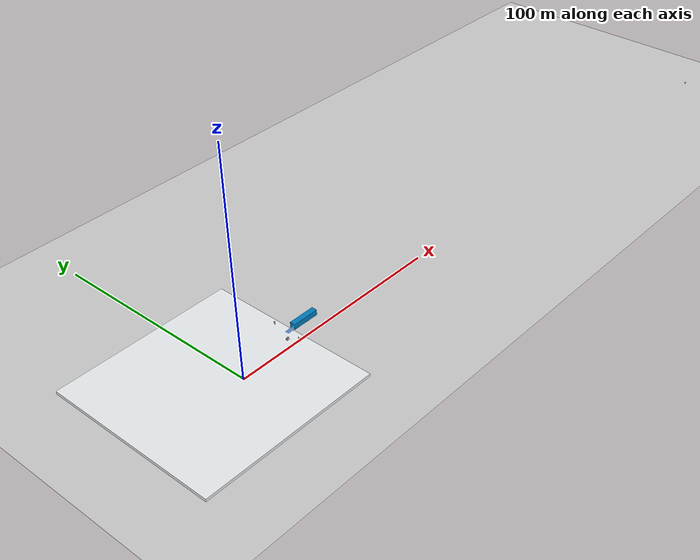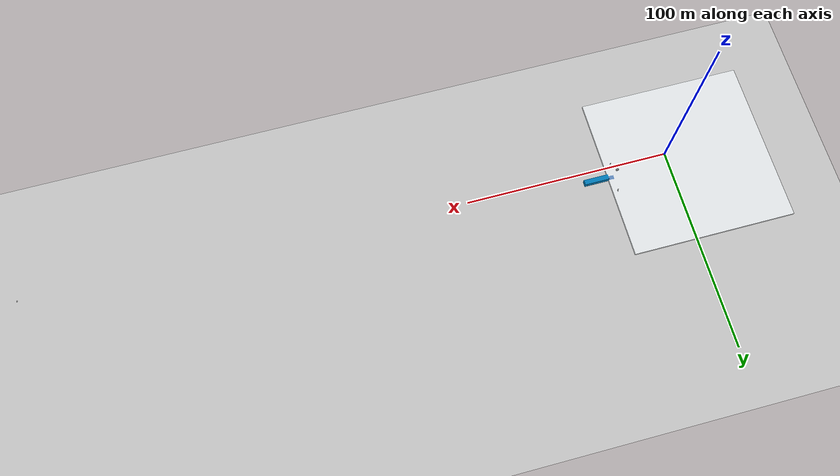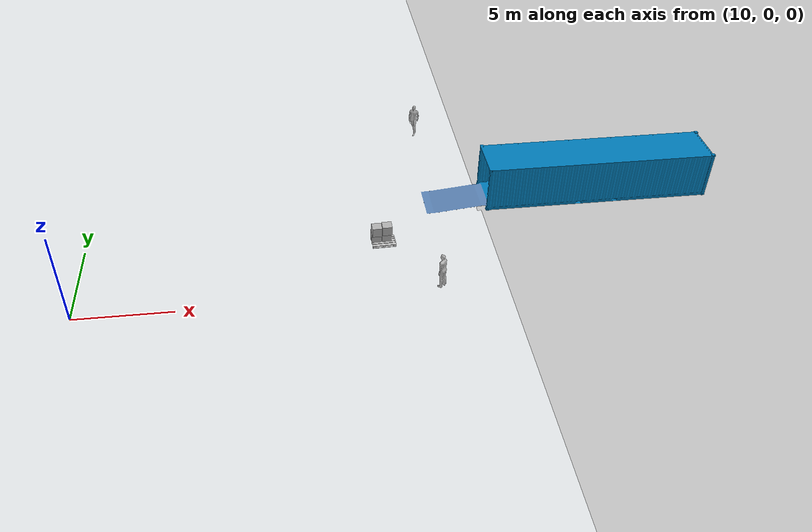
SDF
<sdf version="1.7">
 <world name="default">
  <light name="sun" type="directional">
   <pose>0 0 10 0 -0 0</pose>
   <diffuse>0.8 0.8 0.8 1</diffuse>
   <specular>0.2 0.2 0.2 1</specular>
   <attenuation>
    <range>1000</range>
    <constant>0.9</constant>
    <linear>0.01</linear>
    <quadratic>0.001</quadratic>
   </attenuation>
   <direction>-0.5 0.1 -0.9</direction>
   <spot><inner_angle>0</inner_angle><outer_angle>0</outer_angle><falloff>0</falloff></spot>
  </light>
  <model name="ground_plane">
   <static>1</static>
   <link name="link">
    <collision name="collision">
     <geometry><plane><normal>0 0 1</normal><size>100 100</size></plane></geometry>
     <surface>
      <contact><collide_bitmask>65535</collide_bitmask></contact>
      <friction><ode><mu>100</mu><mu2>50</mu2></ode></friction>
     </surface>
    </collision>
    <visual name="visual">
     <cast_shadows>0</cast_shadows>
     <geometry><plane><normal>0 0 1</normal><size>100 100</size></plane></geometry>
     <material>
      <script><uri>file://media/materials/scripts/gazebo.material</uri><name>Gazebo/Grey</name></script>
     </material>
    </visual>
   </link>
  </model>
  <gravity>0 0 -9.8</gravity>
  <magnetic_field>6e-06 2.3e-05 -4.2e-05</magnetic_field>
  <atmosphere type="adiabatic"/>
  <physics type="ode">
   <max_step_size>0.001</max_step_size>
   <real_time_factor>1</real_time_factor>
   <real_time_update_rate>1000</real_time_update_rate>
  </physics>
  <scene><ambient>0.4 0.4 0.4 1</ambient><background>0.7 0.7 0.7 1</background><shadows>1</shadows></scene>
  <spherical_coordinates>
   <surface_model>EARTH_WGS84</surface_model>
   <latitude_deg>0</latitude_deg>
   <longitude_deg>0</longitude_deg>
   <elevation>0</elevation>
   <heading_deg>0</heading_deg>
  </spherical_coordinates>
  <model name="warehouse">
   <static>1</static>
   <link name="link">
    <collision name="collision">
     <geometry><mesh><uri>model://warehouse_02/meshes/warehouse_sim_9.dae</uri></mesh></geometry>
    </collision>
    <visual name="visual">
     <geometry><mesh><uri>model://warehouse_02/meshes/warehouse_sim_9.dae</uri></mesh></geometry>
    </visual>
   </link>
   <pose>31.4271 5.66762 0 0 -0 0</pose>
  </model>
  <model name="euro_pallet">
   <link name="link">
    <pose>0 0 0.05 0 -0 0</pose>
    <inertial>
     <mass>20</mass>
     <inertia><ixx>2.43</ixx><ixy>0</ixy><ixz>0</ixz><iyy>1.1</iyy><iyz>0</iyz><izz>3.47</izz></inertia>
    </inertial>
    <collision name="collision">
     <pose>0 0 0.05 0 -0 0</pose>
     <geometry><mesh><uri>model://euro_pallet/meshes/pallet.dae</uri><scale>0.1 0.1 0.1</scale></mesh></geometry>
    </collision>
    <visual name="visual">
     <pose>0 0 0.05 0 -0 0</pose>
     <geometry><mesh><uri>model://euro_pallet/meshes/pallet.dae</uri><scale>0.1 0.1 0.1</scale></mesh></geometry>
    </visual>
   </link>
   <pose>25.5538 2.52715 1.29987 -4e-06 -0 -1.53527</pose>
  </model>
  <model name="500x500x500_box">
   <link name="link">
    <collision name="collision">
     <geometry>
      <mesh><scale>1 1 1</scale><uri>model://500x500x500_box/meshes/500x500x500_box_v2.dae</uri></mesh>
     </geometry>
    </collision>
    <visual name="visual">
     <geometry>
      <mesh><scale>1 1 1</scale><uri>model://500x500x500_box/meshes/500x500x500_box_v2.dae</uri></mesh>
     </geometry>
    </visual>
    <inertial>
     <inertia><ixx>1</ixx><ixy>0</ixy><ixz>0</ixz><iyy>1</iyy><iyz>0</iyz><izz>1</izz></inertia>
     <mass>1</mass>
    </inertial>
   </link>
   <pose>25.1851 2.66778 1.67213 0.001304 6.3e-05 -0.00913</pose>
  </model>
  <model name="500x500x500_box_clone">
   <link name="link">
    <collision name="collision">
     <geometry>
      <mesh><scale>1 1 1</scale><uri>model://500x500x500_box/meshes/500x500x500_box_v2.dae</uri></mesh>
     </geometry>
    </collision>
    <visual name="visual">
     <geometry>
      <mesh><scale>1 1 1</scale><uri>model://500x500x500_box/meshes/500x500x500_box_v2.dae</uri></mesh>
     </geometry>
    </visual>
    <inertial>
     <inertia><ixx>1</ixx><ixy>0</ixy><ixz>0</ixz><iyy>1</iyy><iyz>0</iyz><izz>1</izz></inertia>
     <mass>1</mass>
    </inertial>
   </link>
   <pose>25.7065 2.68933 1.67212 0.00123 5.6e-05 -0.008646</pose>
  </model>
  <model name="500x500x500_box_clone_clone">
   <link name="link">
    <collision name="collision">
     <geometry>
      <mesh><scale>1 1 1</scale><uri>model://500x500x500_box/meshes/500x500x500_box_v2.dae</uri></mesh>
     </geometry>
    </collision>
    <visual name="visual">
     <geometry>
      <mesh><scale>1 1 1</scale><uri>model://500x500x500_box/meshes/500x500x500_box_v2.dae</uri></mesh>
     </geometry>
    </visual>
    <inertial>
     <inertia><ixx>1</ixx><ixy>0</ixy><ixz>0</ixz><iyy>1</iyy><iyz>0</iyz><izz>1</izz></inertia>
     <mass>1</mass>
    </inertial>
   </link>
   <pose>25.7219 2.53458 2.17193 0.001233 4.6e-05 -0.001243</pose>
  </model>
  <model name="500x500x500_box_clone_clone_clone">
   <link name="link">
    <collision name="collision">
     <geometry>
      <mesh><scale>1 1 1</scale><uri>model://500x500x500_box/meshes/500x500x500_box_v2.dae</uri></mesh>
     </geometry>
    </collision>
    <visual name="visual">
     <geometry>
      <mesh><scale>1 1 1</scale><uri>model://500x500x500_box/meshes/500x500x500_box_v2.dae</uri></mesh>
     </geometry>
    </visual>
    <inertial>
     <inertia><ixx>1</ixx><ixy>0</ixy><ixz>0</ixz><iyy>1</iyy><iyz>0</iyz><izz>1</izz></inertia>
     <mass>1</mass>
    </inertial>
   </link>
   <pose>25.1996 2.48039 2.17214 0.001356 5.4e-05 -0.000481</pose>
  </model>
  <model name="500x500x500_box_clone_clone_clone_clone">
   <link name="link">
    <collision name="collision">
     <geometry>
      <mesh><scale>1 1 1</scale><uri>model://500x500x500_box/meshes/500x500x500_box_v2.dae</uri></mesh>
     </geometry>
    </collision>
    <visual name="visual">
     <geometry>
      <mesh><scale>1 1 1</scale><uri>model://500x500x500_box/meshes/500x500x500_box_v2.dae</uri></mesh>
     </geometry>
    </visual>
    <inertial>
     <inertia><ixx>1</ixx><ixy>0</ixy><ixz>0</ixz><iyy>1</iyy><iyz>0</iyz><izz>1</izz></inertia>
     <mass>1</mass>
    </inertial>
   </link>
   <pose>42.8307 6.16795 1.79086 -1e-06 -0 -0.00097</pose>
  </model>
  <model name="500x500x500_box_clone_clone_clone_clone_clone">
   <link name="link">
    <collision name="collision">
     <geometry>
      <mesh><scale>1 1 1</scale><uri>model://500x500x500_box/meshes/500x500x500_box_v2.dae</uri></mesh>
     </geometry>
    </collision>
    <visual name="visual">
     <geometry>
      <mesh><scale>1 1 1</scale><uri>model://500x500x500_box/meshes/500x500x500_box_v2.dae</uri></mesh>
     </geometry>
    </visual>
    <inertial>
     <inertia><ixx>1</ixx><ixy>0</ixy><ixz>0</ixz><iyy>1</iyy><iyz>0</iyz><izz>1</izz></inertia>
     <mass>1</mass>
    </inertial>
   </link>
   <pose>315.591 -6.79113 0.25025 1e-06 0 0.002382</pose>
  </model>
  <model name="500x500x500_box_clone_clone_clone_clone_clone_0">
   <link name="link">
    <collision name="collision">
     <geometry>
      <mesh><scale>1 1 1</scale><uri>model://500x500x500_box/meshes/500x500x500_box_v2.dae</uri></mesh>
     </geometry>
    </collision>
    <visual name="visual">
     <geometry>
      <mesh><scale>1 1 1</scale><uri>model://500x500x500_box/meshes/500x500x500_box_v2.dae</uri></mesh>
     </geometry>
    </visual>
    <inertial>
     <inertia><ixx>1</ixx><ixy>0</ixy><ixz>0</ixz><iyy>1</iyy><iyz>0</iyz><izz>1</izz></inertia>
     <mass>1</mass>
    </inertial>
   </link>
   <pose>41.8783 5.70411 1.79086 1.83993 -1.57079 -1.94665</pose>
  </model>
  <model name="500x500x500_box_clone_clone_clone_clone_clone_0_clone">
   <link name="link">
    <collision name="collision">
     <geometry>
      <mesh><scale>1 1 1</scale><uri>model://500x500x500_box/meshes/500x500x500_box_v2.dae</uri></mesh>
     </geometry>
    </collision>
    <visual name="visual">
     <geometry>
      <mesh><scale>1 1 1</scale><uri>model://500x500x500_box/meshes/500x500x500_box_v2.dae</uri></mesh>
     </geometry>
    </visual>
    <inertial>
     <inertia><ixx>1</ixx><ixy>0</ixy><ixz>0</ixz><iyy>1</iyy><iyz>0</iyz><izz>1</izz></inertia>
     <mass>1</mass>
    </inertial>
   </link>
   <pose>42.6613 5.51356 1.79086 0 -0 -0.143335</pose>
  </model>
  <model name="500x500x500_box_clone_clone_clone_clone_clone_0_clone_clone_0">
   <link name="link">
    <collision name="collision">
     <geometry>
      <mesh><scale>1 1 1</scale><uri>model://500x500x500_box/meshes/500x500x500_box_v2.dae</uri></mesh>
     </geometry>
    </collision>
    <visual name="visual">
     <geometry>
      <mesh><scale>1 1 1</scale><uri>model://500x500x500_box/meshes/500x500x500_box_v2.dae</uri></mesh>
     </geometry>
    </visual>
    <inertial>
     <inertia><ixx>1</ixx><ixy>0</ixy><ixz>0</ixz><iyy>1</iyy><iyz>0</iyz><izz>1</izz></inertia>
     <mass>1</mass>
    </inertial>
   </link>
   <pose>42.3459 4.92902 1.79086 1.5708 0 -0.240929</pose>
  </model>
  <model name="person_walking">
   <link name="link">
    <inertial>
     <pose>0 0 0.95 0 -0 0</pose>
     <mass>80</mass>
     <inertia><ixx>27.82</ixx><ixy>0</ixy><ixz>0</ixz><iyy>24.88</iyy><iyz>0</iyz><izz>4.57</izz></inertia>
    </inertial>
    <collision name="bottom">
     <pose>0 0 0.01 0 -0 0</pose>
     <geometry><box><size>0.35 0.75 0.02</size></box></geometry>
    </collision>
    <collision name="person">
     <pose>0 0 -0.02 0 -0 0</pose>
     <geometry><mesh><uri>model://person_walking/meshes/walking.dae</uri></mesh></geometry>
    </collision>
    <visual name="visual">
     <pose>0 0 -0.02 0 -0 0</pose>
     <geometry><mesh><uri>model://person_walking/meshes/walking.dae</uri></mesh></geometry>
    </visual>
   </link>
   <pose>28.7008 12.7975 1.27786 -1e-06 4e-06 -0.449975</pose>
  </model>
  <model name="person_standing">
   <link name="link">
    <inertial>
     <pose>0 -0.1 0.95 0 -0 0</pose>
     <mass>80</mass>
     <inertia><ixx>24.88</ixx><ixy>0</ixy><ixz>0</ixz><iyy>25.73</iyy><iyz>0</iyz><izz>2.48</izz></inertia>
    </inertial>
    <collision name="bottom">
     <pose>0 -0.1 0.01 0 -0 0</pose>
     <geometry><box><size>0.5 0.35 0.02</size></box></geometry>
    </collision>
    <collision name="person">
     <pose>0 0 0.02 0.04 -0 0</pose>
     <geometry><mesh><uri>model://person_standing/meshes/standing.dae</uri></mesh></geometry>
    </collision>
    <visual name="visual">
     <pose>0 0 0.02 0.04 -0 0</pose>
     <geometry><mesh><uri>model://person_standing/meshes/standing.dae</uri></mesh></geometry>
    </visual>
   </link>
   <pose>27.9816 -1.12381 1.27786 -3e-06 -3e-06 -2.39963</pose>
  </model>
  <light name="user_spot_light_0" type="spot">
   <pose>11.212 0.27236 1 0 -0 0</pose>
   <diffuse>0.5 0.5 0.5 1</diffuse>
   <specular>0.1 0.1 0.1 1</specular>
   <direction>0 0 -1</direction>
   <attenuation>
    <range>20</range>
    <constant>0.5</constant>
    <linear>0.01</linear>
    <quadratic>0.001</quadratic>
   </attenuation>
   <cast_shadows>0</cast_shadows>
   <spot><inner_angle>0.6</inner_angle><outer_angle>1</outer_angle><falloff>1</falloff></spot>
  </light>
  <light name="user_point_light_0" type="point">
   <pose>25.3341 6.71963 1 0 -0 0</pose>
   <diffuse>0.5 0.5 0.5 1</diffuse>
   <specular>0.1 0.1 0.1 1</specular>
   <attenuation>
    <range>20</range>
    <constant>0.5</constant>
    <linear>0.01</linear>
    <quadratic>0.001</quadratic>
   </attenuation>
   <cast_shadows>0</cast_shadows>
   <direction>0 0 -1</direction>
   <spot><inner_angle>0</inner_angle><outer_angle>0</outer_angle><falloff>0</falloff></spot>
  </light>
  <light name="user_directional_light_0" type="directional">
   <pose>24.1035 -20.3711 1 0 -0 0</pose>
   <diffuse>0.5 0.5 0.5 1</diffuse>
   <specular>0.1 0.1 0.1 1</specular>
   <direction>0.1 0.1 -0.9</direction>
   <attenuation>
    <range>20</range>
    <constant>0.5</constant>
    <linear>0.01</linear>
    <quadratic>0.001</quadratic>
   </attenuation>
  </light>
 </world>
</sdf>
